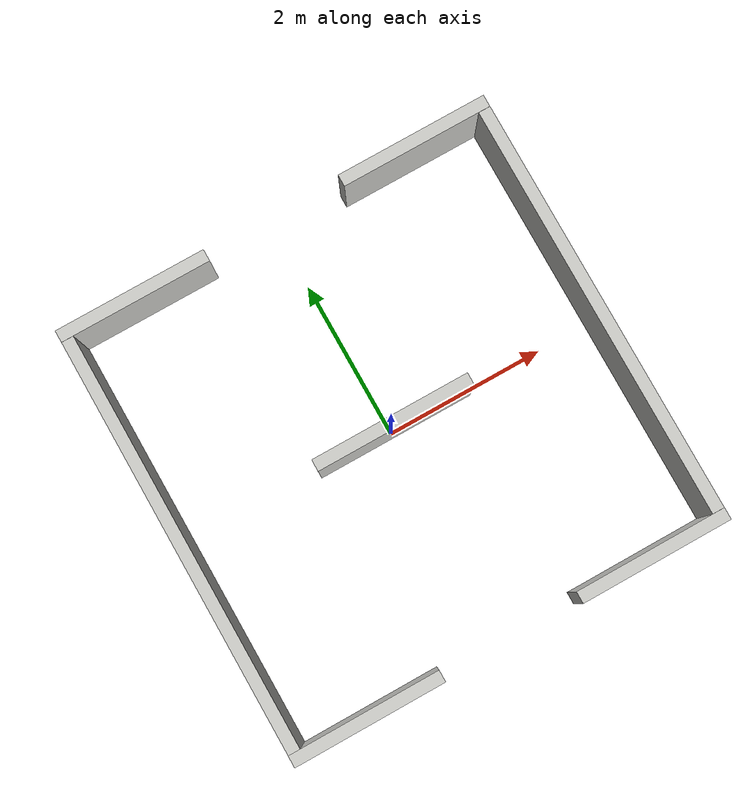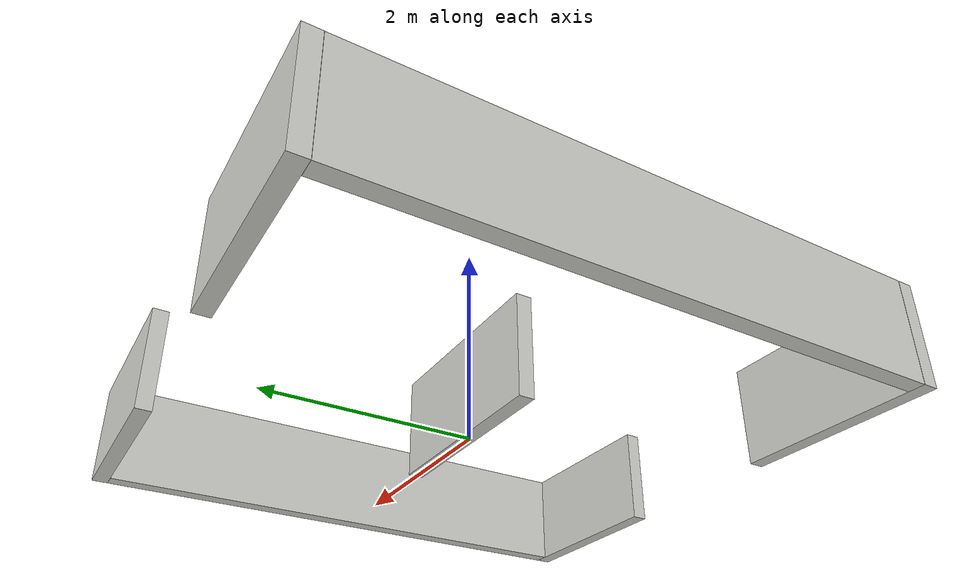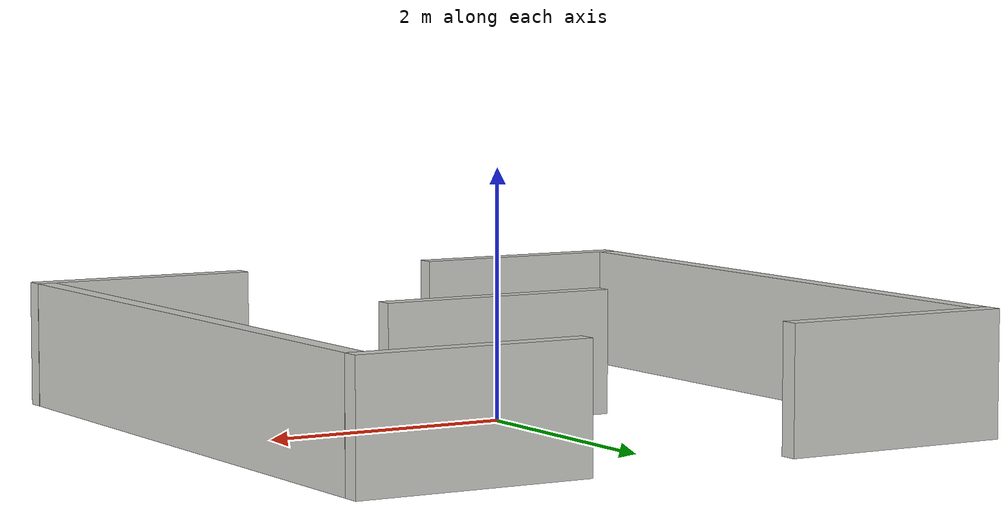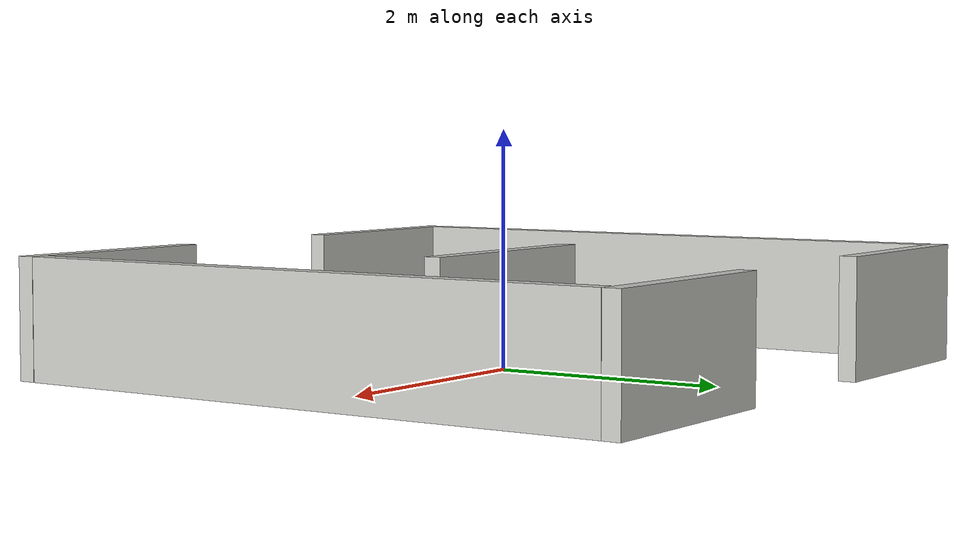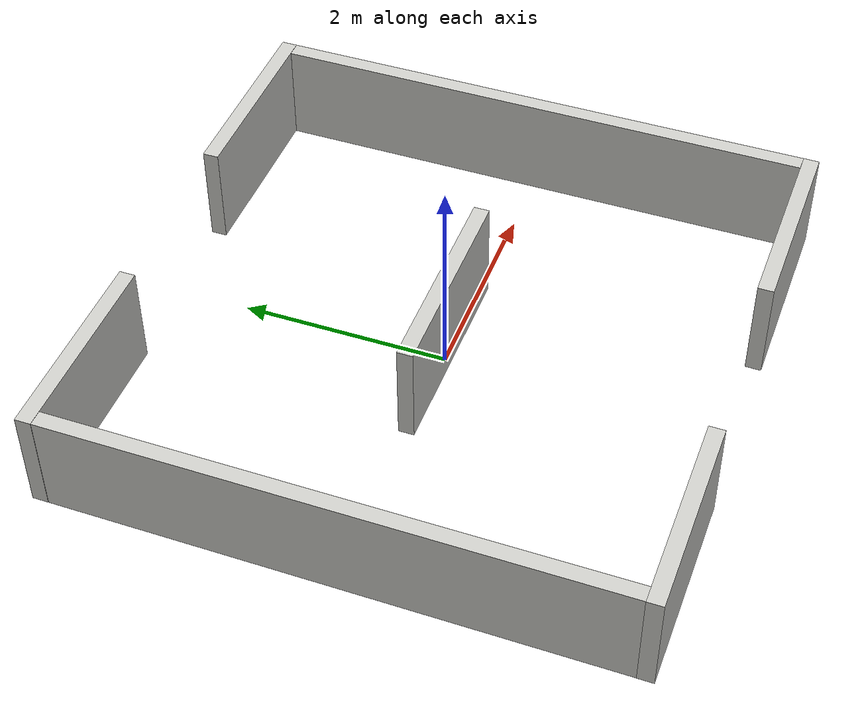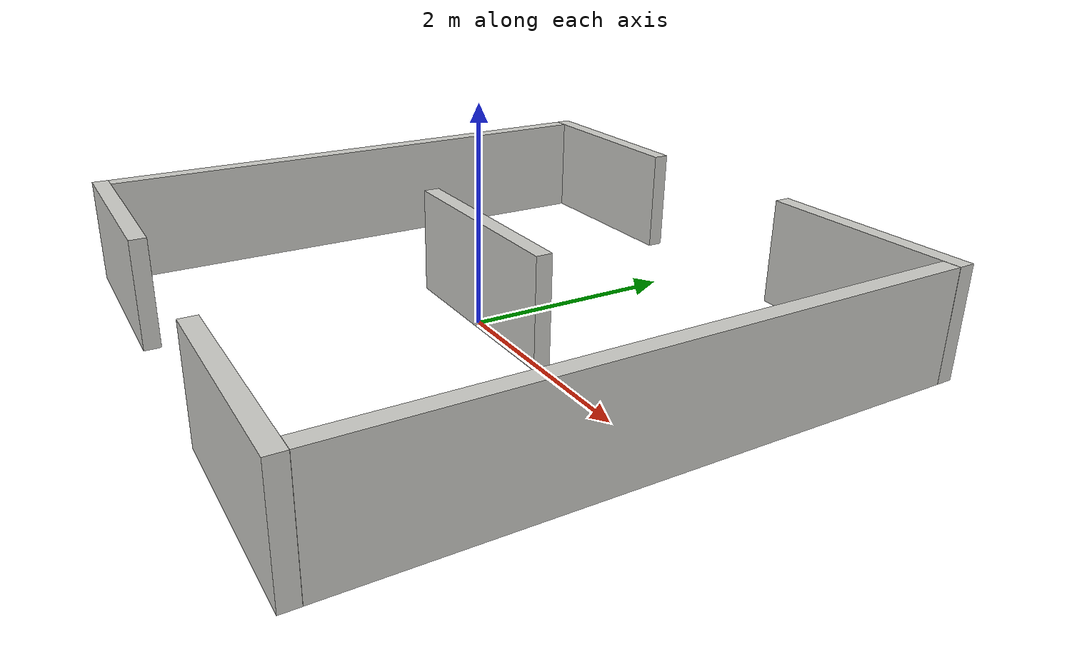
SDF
<?xml version='1.0'?>
<sdf version='1.6'>
  <model name='room_3x3_split'>
    <static>1</static>
    <pose frame=''>0 0 0 0 -0 0</pose>
    <link name='Wall_1'>
      <collision name='Wall_1_Collision'>
        <geometry>
          <box>
            <size>5.25 0.15 1.0</size>
          </box>
        </geometry>
        <pose frame=''>0 0 0.5 0 -0 0</pose>
      </collision>
      <visual name='Wall_1_Visual'>
        <pose frame=''>0 0 0.5 0 -0 0</pose>
        <geometry>
          <box>
            <size>5.25 0.15 1.0</size>
          </box>
        </geometry>
        <material>
          <script>
            <uri>file://media/materials/scripts/gazebo.material</uri>
            <name>Gazebo/CeilingTiled</name>
          </script>
          <ambient>1 0.764706 0.305882 1</ambient>
        </material>
      </visual>
      <pose frame=''>-2.69653 -0.003278 0 0 0 -1.5708</pose>
    </link>
    <link name='Wall_2'>
      <collision name='Wall_2_Collision'>
        <geometry>
          <box>
            <size>5.25 0.15 1.0</size>
          </box>
        </geometry>
        <pose frame=''>0 0 0.5 0 -0 0</pose>
      </collision>
      <visual name='Wall_2_Visual'>
        <pose frame=''>0 0 0.5 0 -0 0</pose>
        <geometry>
          <box>
            <size>5.25 0.15 1.0</size>
          </box>
        </geometry>
        <material>
          <script>
            <uri>file://media/materials/scripts/gazebo.material</uri>
            <name>Gazebo/CeilingTiled</name>
          </script>
          <ambient>1 0.764706 0.305882 1</ambient>
        </material>
      </visual>
      <pose frame=''>2.69688 -0.000452 0 0 0 -1.5708</pose>
    </link>
    <link name='Wall_3'>
      <collision name='Wall_3_Collision'>
        <geometry>
          <box>
            <size>1.9 0.15 1.0</size>
          </box>
        </geometry>
        <pose frame=''>0 0 0.5 0 -0 0</pose>
      </collision>
      <visual name='Wall_3_Visual'>
        <pose frame=''>0 0 0.5 0 -0 0</pose>
        <geometry>
          <box>
            <size>1.9 0.15 1.0</size>
          </box>
        </geometry>
        <material>
          <script>
            <uri>file://media/materials/scripts/gazebo.material</uri>
            <name>Gazebo/CeilingTiled</name>
          </script>
          <ambient>1 0.764706 0.305882 1</ambient>
        </material>
      </visual>
      <pose frame=''>-1.82279 -2.70217 0 0 -0 0</pose>
    </link>
    <link name='Wall_4'>
      <collision name='Wall_4_Collision'>
        <geometry>
          <box>
            <size>1.9 0.15 1.0</size>
          </box>
        </geometry>
        <pose frame=''>0 0 0.5 0 -0 0</pose>
      </collision>
      <visual name='Wall_4_Visual'>
        <pose frame=''>0 0 0.5 0 -0 0</pose>
        <geometry>
          <box>
            <size>1.9 0.15 1.0</size>
          </box>
        </geometry>
        <material>
          <script>
            <uri>file://media/materials/scripts/gazebo.material</uri>
            <name>Gazebo/CeilingTiled</name>
          </script>
          <ambient>1 0.764706 0.305882 1</ambient>
        </material>
      </visual>
      <pose frame=''>-1.82219 2.69878 0 0 -0 0</pose>
    </link>
    <link name='Wall_5'>
      <collision name='Wall_5_Collision'>
        <geometry>
          <box>
            <size>1.9 0.15 1.0</size>
          </box>
        </geometry>
        <pose frame=''>0 0 0.5 0 -0 0</pose>
      </collision>
      <visual name='Wall_5_Visual'>
        <pose frame=''>0 0 0.5 0 -0 0</pose>
        <geometry>
          <box>
            <size>1.9 0.15 1.0</size>
          </box>
        </geometry>
        <material>
          <script>
            <uri>file://media/materials/scripts/gazebo.material</uri>
            <name>Gazebo/CeilingTiled</name>
          </script>
          <ambient>1 0.764706 0.305882 1</ambient>
        </material>
      </visual>
      <pose frame=''>1.82194 2.70217 0 0 -0 0</pose>
    </link>
    <link name='Wall_6'>
      <collision name='Wall_6_Collision'>
        <geometry>
          <box>
            <size>1.9 0.15 1.0</size>
          </box>
        </geometry>
        <pose frame=''>0 0 0.5 0 -0 0</pose>
      </collision>
      <visual name='Wall_6_Visual'>
        <pose frame=''>0 0 0.5 0 -0 0</pose>
        <geometry>
          <box>
            <size>1.9 0.15 1.0</size>
          </box>
        </geometry>
        <material>
          <script>
            <uri>file://media/materials/scripts/gazebo.material</uri>
            <name>Gazebo/CeilingTiled</name>
          </script>
          <ambient>1 0.764706 0.305882 1</ambient>
        </material>
      </visual>
      <pose frame=''>1.82279 -2.70173 0 0 -0 0</pose>
    </link>
    <link name='Wall_7'>
      <collision name='Wall_7_Collision'>
        <geometry>
          <box>
            <size>2 0.15 1.0</size>
          </box>
        </geometry>
        <pose frame=''>0 0 0.5 0 -0 0</pose>
      </collision>
      <visual name='Wall_7_Visual'>
        <pose frame=''>0 0 0.5 0 -0 0</pose>
        <geometry>
          <box>
            <size>2 0.15 1.0</size>
          </box>
        </geometry>
        <material>
          <script>
            <uri>file://media/materials/scripts/gazebo.material</uri>
            <name>Gazebo/CeilingTiled</name>
          </script>
          <ambient>1 0.764706 0.305882 1</ambient>
        </material>
      </visual>
      <pose frame=''>0.033144 0.01482 0 0 -0 0</pose>
    </link>
  </model>
</sdf>
